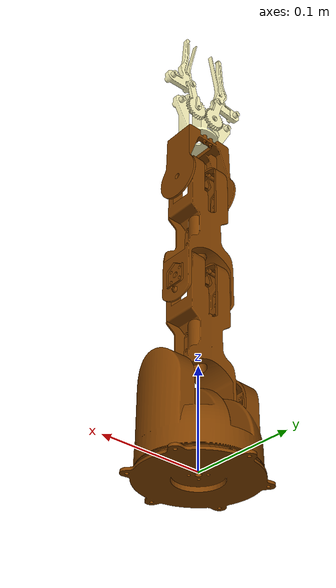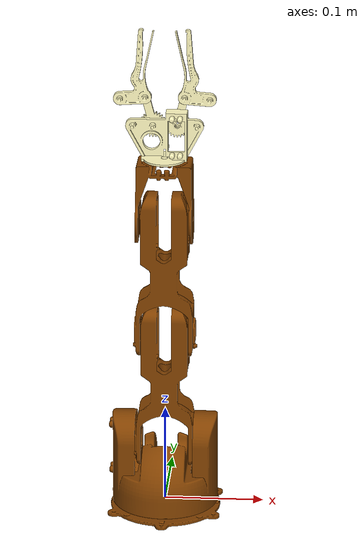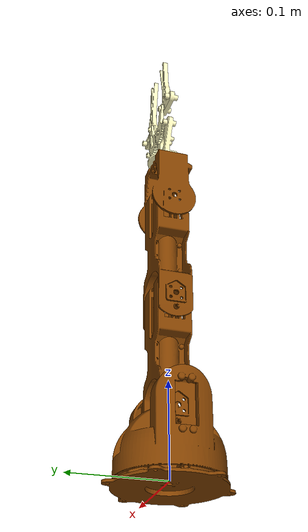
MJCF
<mujoco model="my-braccio">
  <compiler angle="radian" meshdir="assets/"/>

  <option cone="elliptic" impratio="10"/>

  <asset>
    <mesh name="Base" file="Base.STL"/>
    <mesh name="Rolling_Base" file="Rolling_Base.STL"/>
    <mesh name="Arm_1" file="Arm.STL"/>
    <mesh name="Arm_2" file="Arm.STL"/>
    <mesh name="Wrist" file="Wrist.STL"/>
    <mesh name="Hand" file="Hand.STL"/>
    <mesh name="Sup_Servo" file="Sup_Servo.STL"/>
    <mesh name="Sup_Finger_Base_1" file="Sup_Finger_Base.STL"/>
    <mesh name="Sup_Finger_Base_2" file="Sup_Finger_Base.STL"/>
    <mesh name="Finger_1" file="Finger.STL"/>
    <mesh name="Finger_2" file="Finger.STL"/>
    <mesh name="Sup_Finger_1" file="Sup_Finger.STL"/>
    <mesh name="Sup_Finger_2" file="Sup_Finger.STL"/>
    <mesh name="Sup_Finger_3" file="Sup_Finger.STL"/>
    <mesh name="Sup_Finger_4" file="Sup_Finger.STL"/>
    <material name="red" rgba="1 0 0 1"/>
    <material name="blue" rgba="0 0 1 1"/>
    <material name="green" rgba="0 1 0 1"/>
    <material name="purple" rgba="0.5 0.1 0.6 1" specular="0.5" shininess="0.7"/>
    <material name="yellow" rgba="1 1 0 1"/>
    <material name="orange" rgba="0.5 0.25 0.0 1.0"/>
    <material name="cream_yellowish" rgba="1.0 0.976 0.749 1.0"/>
  </asset>

  <default>
    <joint armature="0.1" damping="0.1" limited="true" frictionloss="0.1" range="-3.14 3.14"/>
    <position kp="50" dampratio="1" forcerange="-35 35" ctrlrange="-3.14158 3.14158"/>
  </default>

  <worldbody>
    <body name="Base" pos="0 0 0">
      <geom name="base_geom" type="mesh" mesh="Base" contype="1" conaffinity="1" material="orange"/>

      <body name="Rolling_Base" pos="0 0 0">
        <joint name="base_rotation" type="hinge" pos="0 0 0" axis="0 0 1" range="-1.570796 1.570796"/>
        <geom name="rolling_base_geom" type="mesh" contype="0" conaffinity="0" mesh="Rolling_Base" material="orange"/>

        <body name="Arm_1" pos="0 0 0.065" euler="0 0 0">
          <joint name="shoulder_joint" type="hinge" pos="0 0 0" axis="1 0 0" range="-1.22173 1.22173"/>
          <geom name="arm_1_geom" type="mesh" mesh="Arm_1" material="orange"/>
          <inertial pos="0 0.06 0.03" mass="0.16" diaginertia="0.00021 0.00016 0.00007"/>

          <body name="Arm_2" pos="0 0 0.12" euler="0 0 0">
            <joint name="elbow_joint" type="hinge" pos="0 0 0" axis="1 0 0" range="-1.570796 1.570796"/>
            <geom name="arm_2_geom" type="mesh" mesh="Arm_2" material="orange"/>

            <body name="Wrist" pos="0 0 0.12" euler="-1.570796 0 0">
              <joint name="wrist_joint" type="hinge" pos="0 0 0" axis="1 0 0" range="-1.570796 1.570796"/>
              <geom name="wrist_geom" type="mesh" mesh="Wrist" material="orange"/>

              <body name="Hand" pos="0 -0.062 0">
                <joint name="hand_joint" type="hinge" pos="0 0 0" axis="0 1 0" range="-1.570796 1.570796"/>
                <geom name="hand_geom" type="mesh" mesh="Hand" material="cream_yellowish"/>

                <body name="Sup_Servo" pos="0.01210 -0.034 0.01250" euler="-1.570796 1.500983 1.570796">
                  <joint name="sup_servo_joint" type="hinge" pos="0 0 0" axis="1 0 0" range="-0.2 0.1"/>
                  <geom name="sup_servo_geom" type="mesh" mesh="Sup_Servo" material="cream_yellowish"/>

                  <body name="Sup_Finger_Base_1" pos="0 0 0" euler="1.570796 0 0">
                    <geom name="sup_finger_base_geom" type="mesh" mesh="Sup_Finger_Base_1" material="cream_yellowish"/>

                    <body name="Finger_1" pos="0.005 0.00544 0.02955" euler="0 0 0">
                      <geom name="finger_geom" type="mesh" mesh="Finger_1" material="cream_yellowish" friction="10 1 1"/>

                    </body>
                  </body>
                </body>

                <body name="Sup_Finger_Base_2" pos="-0.01205 -0.034 0.01250" euler="1.570796 -0.436332 -1.570796">
                  <geom name="sup_finger_base_2_geom" type="mesh" mesh="Sup_Finger_Base_2" material="cream_yellowish"/>
                  <joint name="finger_sync_joint" type="hinge" pos="0 0 0" axis="1 0 0" range="-0.1 0.2"/>

                  <body name="Finger_2" pos="0.005 0.00544 0.02955" euler="-0.365472 0.000000 3.141593">
                    <geom name="finger_2_geom" type="mesh" mesh="Finger_2" material="cream_yellowish" friction="10 1 1"/>

                  </body>
                </body>
              </body>
            </body>
          </body>
        </body>
      </body>
    </body>
  </worldbody>

  <actuator>
    <position name="base_motor" joint="base_rotation"/>
    <position name="shoulder_motor" joint="shoulder_joint"/>
    <position name="elbow_motor" joint="elbow_joint" />
    <position name="wrist_motor" joint="wrist_joint"/>
    <position name="hand_motor" joint="hand_joint"/>
    <position name="sup_servo_motor" gear="20" joint="sup_servo_joint"/>
  </actuator>

<equality>
  <joint joint1="sup_servo_joint" joint2="finger_sync_joint" polycoef="0 -1"/>
</equality>

<keyframe>
  <key name="home" qpos="0 0 0 0 0 0 0  0 0 0 0 0 0 0" ctrl="0 0 0 0 0 0"/> <!-- qpos'taki son 7 basamak, sahneye eklenen spehere objesi için-->
</keyframe>

</mujoco>
